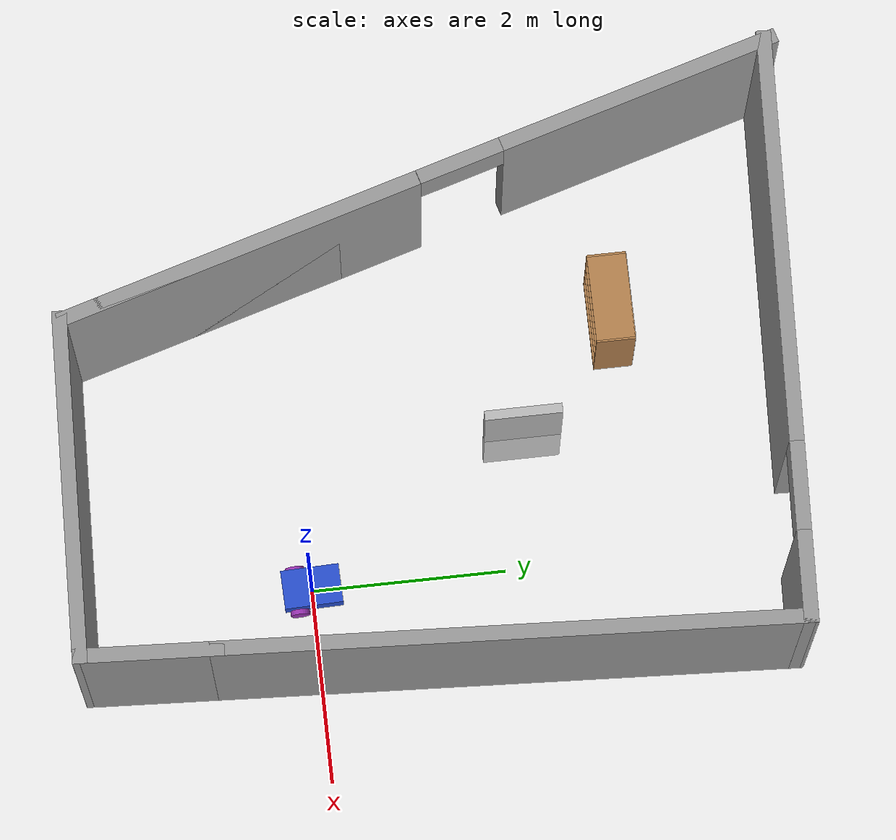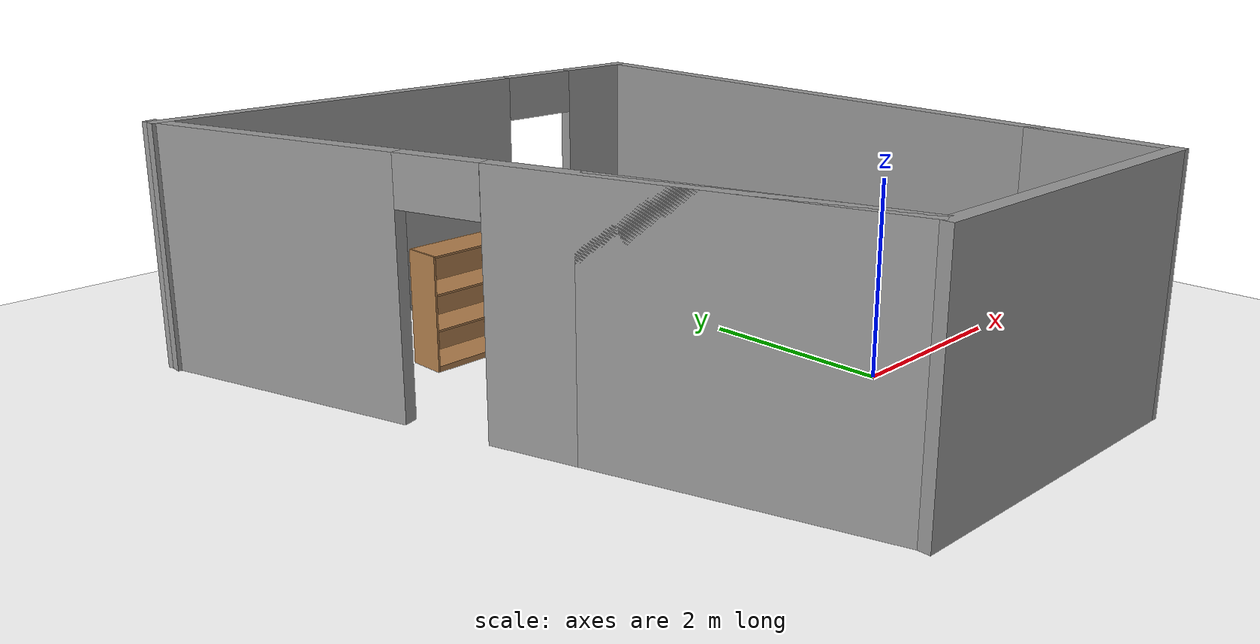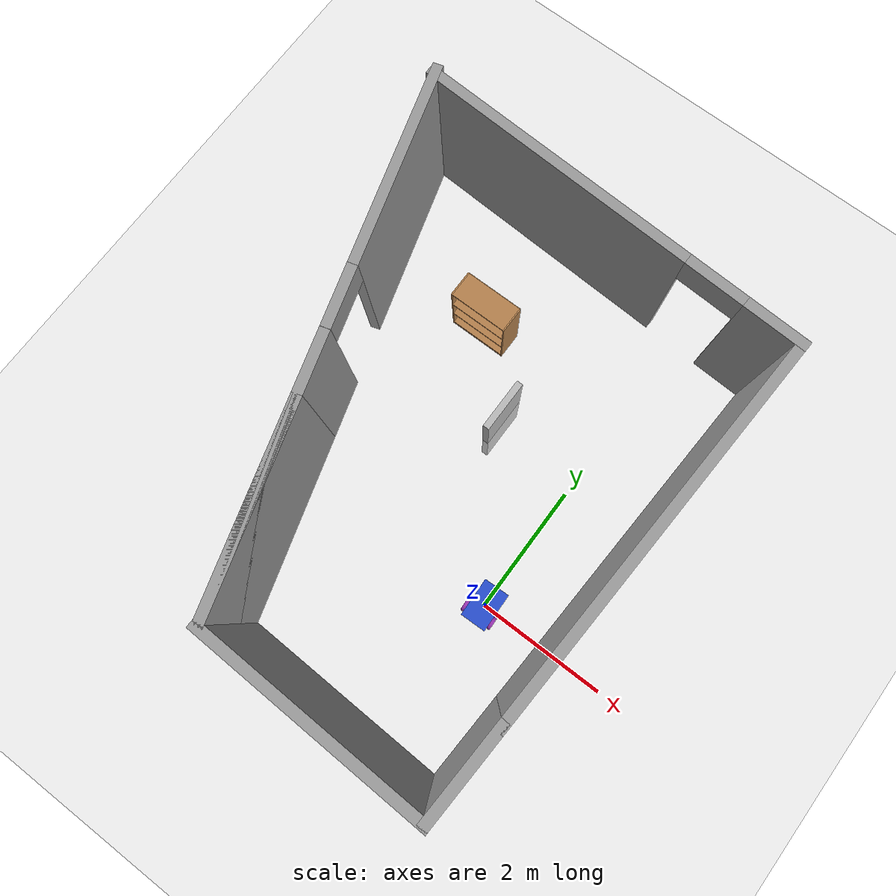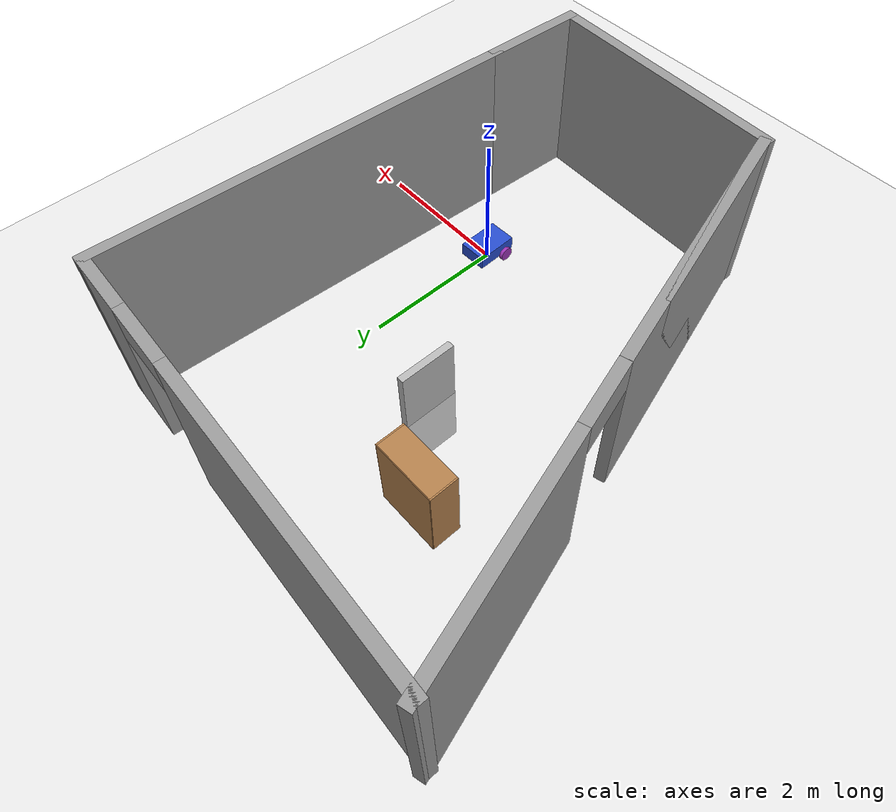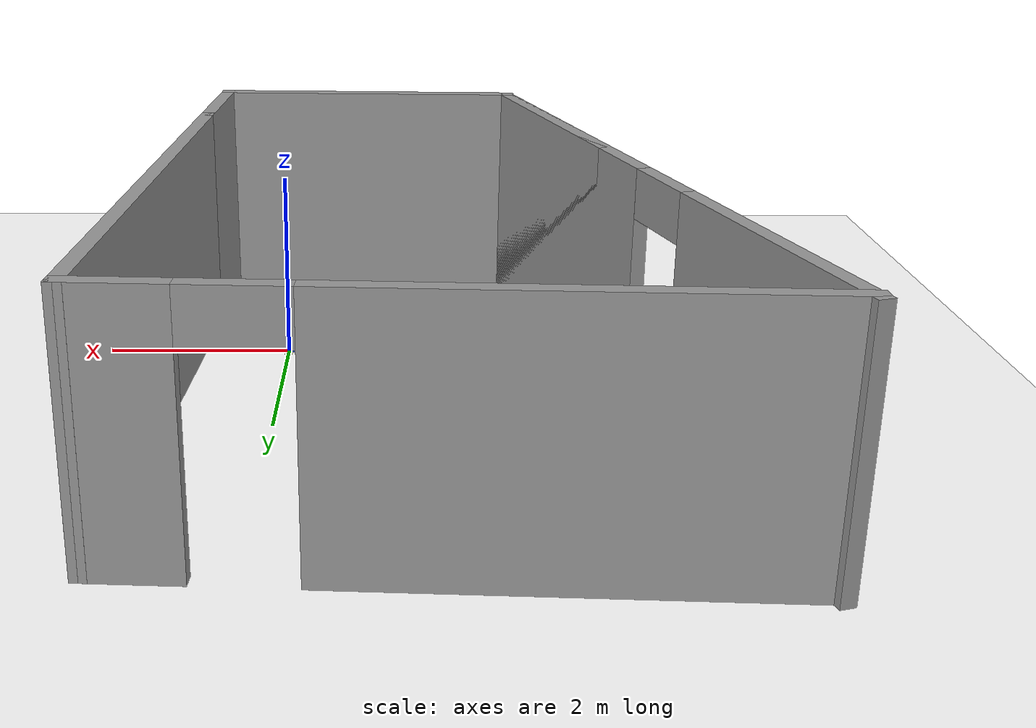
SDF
<sdf version="1.7">
 <world name="default">
  <light name="sun" type="directional">
   <pose>0 0 10 0 -0 0</pose>
   <diffuse>0.8 0.8 0.8 1</diffuse>
   <specular>0.2 0.2 0.2 1</specular>
   <attenuation>
    <range>1000</range>
    <constant>0.9</constant>
    <linear>0.01</linear>
    <quadratic>0.001</quadratic>
   </attenuation>
   <direction>-0.5 0.1 -0.9</direction>
   <spot><inner_angle>0</inner_angle><outer_angle>0</outer_angle><falloff>0</falloff></spot>
  </light>
  <model name="ground_plane">
   <static>1</static>
   <link name="link">
    <collision name="collision">
     <geometry><plane><normal>0 0 1</normal><size>100 100</size></plane></geometry>
     <surface>
      <contact><collide_bitmask>65535</collide_bitmask></contact>
      <friction><ode><mu>100</mu><mu2>50</mu2></ode></friction>
     </surface>
    </collision>
    <visual name="visual">
     <cast_shadows>0</cast_shadows>
     <geometry><plane><normal>0 0 1</normal><size>100 100</size></plane></geometry>
     <material>
      <script><uri>file://media/materials/scripts/gazebo.material</uri><name>Gazebo/Grey</name></script>
     </material>
    </visual>
   </link>
  </model>
  <gravity>0 0 -9.8</gravity>
  <magnetic_field>6e-06 2.3e-05 -4.2e-05</magnetic_field>
  <atmosphere type="adiabatic"/>
  <physics type="ode">
   <max_step_size>0.001</max_step_size>
   <real_time_factor>1</real_time_factor>
   <real_time_update_rate>1000</real_time_update_rate>
  </physics>
  <scene><ambient>0.4 0.4 0.4 1</ambient><background>0.7 0.7 0.7 1</background><shadows>1</shadows></scene>
  <audio><device>default</device></audio>
  <spherical_coordinates>
   <surface_model>EARTH_WGS84</surface_model>
   <latitude_deg>0</latitude_deg>
   <longitude_deg>0</longitude_deg>
   <elevation>0</elevation>
   <heading_deg>0</heading_deg>
  </spherical_coordinates>
  <model name="my_robot">
   <link name="empty_link">
    <inertial>
     <pose>0 0.025 0.175 0 -0 0</pose>
     <mass>6</mass>
     <inertia>
      <ixx>1.38683</ixx>
      <ixy>0</ixy>
      <ixz>0</ixz>
      <iyy>3.50142</iyy>
      <iyz>0.01875</iyz>
      <izz>2.70142</izz>
     </inertia>
    </inertial>
    <collision name="empty_link_fixed_joint_lump__base_link_collision">
     <pose>0 0 0.2 0 -0 0</pose>
     <geometry><box><size>0.4 0.6 0.2</size></box></geometry>
    </collision>
    <collision name="empty_link_fixed_joint_lump__castor_wheel_link_collision_1">
     <pose>0 0.15 0.05 0 -0 0</pose>
     <geometry><sphere><radius>0.05</radius></sphere></geometry>
     <surface><friction><ode><mu>0.1</mu><mu2>0.1</mu2></ode></friction></surface>
    </collision>
    <visual name="empty_link_fixed_joint_lump__base_link_visual">
     <pose>0 0 0.2 0 -0 0</pose>
     <geometry><box><size>0.4 0.6 0.2</size></box></geometry>
     <material>
      <script><name>Gazebo/Blue</name><uri>file://media/materials/scripts/gazebo.material</uri></script>
     </material>
    </visual>
    <visual name="empty_link_fixed_joint_lump__castor_wheel_link_visual_1">
     <pose>0 0.15 0.05 0 -0 0</pose>
     <geometry><sphere><radius>0.05</radius></sphere></geometry>
     <material>
      <script><name>Gazebo/Yellow</name><uri>file://media/materials/scripts/gazebo.material</uri></script>
     </material>
    </visual>
   </link>
   <joint name="base_left_wheel_joint" type="revolute">
    <pose relative_to="empty_link">-0.2 -0.15 0.1 0 -0 0</pose>
    <parent>empty_link</parent>
    <child>left_wheel_link</child>
    <axis>
     <xyz>1 0 0</xyz>
     <limit><lower>-1e+16</lower><upper>1e+16</upper></limit>
     <dynamics><spring_reference>0</spring_reference><spring_stiffness>0</spring_stiffness></dynamics>
    </axis>
   </joint>
   <link name="left_wheel_link">
    <pose relative_to="base_left_wheel_joint">0 0 0 0 -0 0</pose>
    <inertial>
     <pose>-0.025 0 0 3.14159 -1.57079 3.14159</pose>
     <mass>0.5</mass>
     <inertia><ixx>0.0216667</ixx><ixy>0</ixy><ixz>0</ixz><iyy>0.0216667</iyy><iyz>0</iyz><izz>0.04</izz></inertia>
    </inertial>
    <collision name="left_wheel_link_collision">
     <pose>-0.025 0 0 3.14159 -1.57079 3.14159</pose>
     <geometry><cylinder><length>0.05</length><radius>0.1</radius></cylinder></geometry>
    </collision>
    <visual name="left_wheel_link_visual">
     <pose>-0.025 0 0 3.14159 -1.57079 3.14159</pose>
     <geometry><cylinder><length>0.05</length><radius>0.1</radius></cylinder></geometry>
     <material>
      <script><name>Gazebo/Purple</name><uri>file://media/materials/scripts/gazebo.material</uri></script>
     </material>
    </visual>
   </link>
   <joint name="base_right_wheel_joint" type="revolute">
    <pose relative_to="empty_link">0.2 -0.15 0.1 0 -0 0</pose>
    <parent>empty_link</parent>
    <child>right_wheel_link</child>
    <axis>
     <xyz>1 0 0</xyz>
     <limit><lower>-1e+16</lower><upper>1e+16</upper></limit>
     <dynamics><spring_reference>0</spring_reference><spring_stiffness>0</spring_stiffness></dynamics>
    </axis>
   </joint>
   <link name="right_wheel_link">
    <pose relative_to="base_right_wheel_joint">0 0 0 0 -0 0</pose>
    <inertial>
     <pose>0.025 0 0 3.14159 1.57079 3.14159</pose>
     <mass>1</mass>
     <inertia><ixx>0.0433333</ixx><ixy>0</ixy><ixz>0</ixz><iyy>0.0433333</iyy><iyz>0</iyz><izz>0.08</izz></inertia>
    </inertial>
    <collision name="right_wheel_link_collision">
     <pose>0.025 0 0 3.14159 1.57079 3.14159</pose>
     <geometry><cylinder><length>0.05</length><radius>0.1</radius></cylinder></geometry>
    </collision>
    <visual name="right_wheel_link_visual">
     <pose>0.025 0 0 3.14159 1.57079 3.14159</pose>
     <geometry><cylinder><length>0.05</length><radius>0.1</radius></cylinder></geometry>
     <material>
      <script><name>Gazebo/Purple</name><uri>file://media/materials/scripts/gazebo.material</uri></script>
     </material>
    </visual>
   </link>
   <static>0</static>
   <plugin name="diff_drive_controller" filename="libgazebo_ros_diff_drive.so">
    <update_rate>50</update_rate>
    <left_joint>base_left_wheel_joint</left_joint>
    <right_joint>base_right_wheel_joint</right_joint>
    <wheel_separation>0.45</wheel_separation>
    <wheel_diameter>0.2</wheel_diameter>
    <publish_odom>1</publish_odom>
    <publish_odom_tf>1</publish_odom_tf>
    <publish_wheel_tf>1</publish_wheel_tf>
    <odometry_topic>odom</odometry_topic>
    <odometry_frame>odom</odometry_frame>
    <robot_base_frame>empty_link</robot_base_frame>
   </plugin>
   <pose>-8.4e-05 0.002072 -0 -0 -2e-06 0.029416</pose>
  </model>
  <model name="first_env">
   <pose>-1.89967 1.39289 0 0 0 -0.051172</pose>
   <link name="Wall_0">
    <collision name="Wall_0_Collision">
     <geometry><box><size>3.57047 0.15 2.5</size></box></geometry>
     <pose>0 0 1.25 0 -0 0</pose>
    </collision>
    <visual name="Wall_0_Visual">
     <pose>0 0 1.25 0 -0 0</pose>
     <geometry><box><size>3.57047 0.15 2.5</size></box></geometry>
     <material>
      <script><uri>file://media/materials/scripts/gazebo.material</uri><name>Gazebo/Grey</name></script>
      <ambient>1 1 1 1</ambient>
     </material>
     <meta><layer>0</layer></meta>
    </visual>
    <pose>1.25964 -3.60964 0 0 -0 0.015643</pose>
   </link>
   <link name="Wall_1">
    <collision name="Wall_1_Collision">
     <geometry><box><size>1.5 0.15 2.5</size></box></geometry>
     <pose>0 0 1.25 0 -0 0</pose>
    </collision>
    <visual name="Wall_1_Visual">
     <pose>0 0 1.25 0 -0 0</pose>
     <geometry><box><size>1.5 0.15 2.5</size></box></geometry>
     <material>
      <script><uri>file://media/materials/scripts/gazebo.material</uri><name>Gazebo/Grey</name></script>
      <ambient>1 1 1 1</ambient>
     </material>
     <meta><layer>0</layer></meta>
    </visual>
    <pose>2.96967 -2.90789 0 0 -0 1.5708</pose>
   </link>
   <link name="Wall_3">
    <collision name="Wall_3_Collision">
     <geometry><box><size>6 0.15 2.5</size></box></geometry>
     <pose>0 0 1.25 0 -0 0</pose>
    </collision>
    <visual name="Wall_3_Visual">
     <pose>0 0 1.25 0 -0 0</pose>
     <geometry><box><size>6 0.15 2.5</size></box></geometry>
     <material>
      <script><uri>file://media/materials/scripts/gazebo.material</uri><name>Gazebo/Grey</name></script>
      <ambient>1 1 1 1</ambient>
     </material>
     <meta><layer>0</layer></meta>
    </visual>
    <pose>2.96967 0.692108 0 0 -0 1.5708</pose>
   </link>
   <link name="Wall_4">
    <pose>0.009644 3.59036 0 0 -0 -3.13255</pose>
    <visual name="Wall_4_Visual_0">
     <pose>-2.56602 0 1.25 0 -0 0</pose>
     <geometry><box><size>0.938981 0.15 2.5</size></box></geometry>
     <material>
      <script><uri>file://media/materials/scripts/gazebo.material</uri><name>Gazebo/Grey</name></script>
      <ambient>1 1 1 1</ambient>
     </material>
     <meta><layer>0</layer></meta>
    </visual>
    <collision name="Wall_4_Collision_0">
     <geometry><box><size>0.938981 0.15 2.5</size></box></geometry>
     <pose>-2.56602 0 1.25 0 -0 0</pose>
    </collision>
    <visual name="Wall_4_Visual_1">
     <pose>0.919491 0 1.25 0 -0 0</pose>
     <geometry><box><size>4.23204 0.15 2.5</size></box></geometry>
     <material>
      <script><uri>file://media/materials/scripts/gazebo.material</uri><name>Gazebo/Grey</name></script>
      <ambient>1 1 1 1</ambient>
     </material>
     <meta><layer>0</layer></meta>
    </visual>
    <collision name="Wall_4_Collision_1">
     <geometry><box><size>4.23204 0.15 2.5</size></box></geometry>
     <pose>0.919491 0 1.25 0 -0 0</pose>
    </collision>
    <visual name="Wall_4_Visual_2">
     <pose>-1.64653 0 2.25 0 -0 0</pose>
     <geometry><box><size>0.9 0.15 0.5</size></box></geometry>
     <material>
      <script><uri>file://media/materials/scripts/gazebo.material</uri><name>Gazebo/Grey</name></script>
      <ambient>1 1 1 1</ambient>
     </material>
     <meta><layer>0</layer></meta>
    </visual>
    <collision name="Wall_4_Collision_2">
     <geometry><box><size>0.9 0.15 0.5</size></box></geometry>
     <pose>-1.64653 0 2.25 0 -0 0</pose>
    </collision>
   </link>
   <link name="Wall_5">
    <pose>-1.70038 0.017107 0 0 -0 -1.2366</pose>
    <visual name="Wall_5_Visual_0">
     <pose>-2.38842 0 1.25 0 -0 0</pose>
     <geometry><box><size>2.99483 0.15 2.5</size></box></geometry>
     <material>
      <script><uri>file://media/materials/scripts/gazebo.material</uri><name>Gazebo/Grey</name></script>
      <ambient>1 1 1 1</ambient>
     </material>
     <meta><layer>0</layer></meta>
    </visual>
    <collision name="Wall_5_Collision_0">
     <geometry><box><size>2.99483 0.15 2.5</size></box></geometry>
     <pose>-2.38842 0 1.25 0 -0 0</pose>
    </collision>
    <visual name="Wall_5_Visual_1">
     <pose>1.94742 0 1.25 0 -0 0</pose>
     <geometry><box><size>3.87685 0.15 2.5</size></box></geometry>
     <material>
      <script><uri>file://media/materials/scripts/gazebo.material</uri><name>Gazebo/Grey</name></script>
      <ambient>1 1 1 1</ambient>
     </material>
     <meta><layer>0</layer></meta>
    </visual>
    <collision name="Wall_5_Collision_1">
     <geometry><box><size>3.87685 0.15 2.5</size></box></geometry>
     <pose>1.94742 0 1.25 0 -0 0</pose>
    </collision>
    <visual name="Wall_5_Visual_2">
     <pose>2.39668 0 1.25 0 -0 0</pose>
     <geometry><box><size>2.97831 0.15 2.5</size></box></geometry>
     <material>
      <script><uri>file://media/materials/scripts/gazebo.material</uri><name>Gazebo/Grey</name></script>
      <ambient>1 1 1 1</ambient>
     </material>
     <meta><layer>0</layer></meta>
    </visual>
    <collision name="Wall_5_Collision_2">
     <geometry><box><size>2.97831 0.15 2.5</size></box></geometry>
     <pose>2.39668 0 1.25 0 -0 0</pose>
    </collision>
    <visual name="Wall_5_Visual_3">
     <pose>-0.44174 0 2.25 0 -0 0</pose>
     <geometry><box><size>0.898532 0.15 0.5</size></box></geometry>
     <material>
      <script><uri>file://media/materials/scripts/gazebo.material</uri><name>Gazebo/Grey</name></script>
      <ambient>1 1 1 1</ambient>
     </material>
     <meta><layer>0</layer></meta>
    </visual>
    <collision name="Wall_5_Collision_3">
     <geometry><box><size>0.898532 0.15 0.5</size></box></geometry>
     <pose>-0.44174 0 2.25 0 -0 0</pose>
    </collision>
   </link>
   <static>1</static>
  </model>
  <model name="bookshelf">
   <static>1</static>
   <link name="link">
    <inertial><mass>1</mass></inertial>
    <collision name="back">
     <pose>0 0.005 0.6 0 -0 0</pose>
     <geometry><box><size>0.9 0.01 1.2</size></box></geometry>
    </collision>
    <visual name="visual1">
     <pose>0 0.005 0.6 0 -0 0</pose>
     <geometry><box><size>0.9 0.01 1.2</size></box></geometry>
     <material>
      <script><uri>file://media/materials/scripts/gazebo.material</uri><name>Gazebo/Wood</name></script>
     </material>
    </visual>
    <collision name="left_side">
     <pose>0.45 -0.195 0.6 0 -0 0</pose>
     <geometry><box><size>0.02 0.4 1.2</size></box></geometry>
    </collision>
    <visual name="visual2">
     <pose>0.45 -0.195 0.6 0 -0 0</pose>
     <geometry><box><size>0.02 0.4 1.2</size></box></geometry>
     <material>
      <script><uri>file://media/materials/scripts/gazebo.material</uri><name>Gazebo/Wood</name></script>
     </material>
    </visual>
    <collision name="right_side">
     <pose>-0.45 -0.195 0.6 0 -0 0</pose>
     <geometry><box><size>0.02 0.4 1.2</size></box></geometry>
    </collision>
    <visual name="visual3">
     <pose>-0.45 -0.195 0.6 0 -0 0</pose>
     <geometry><box><size>0.02 0.4 1.2</size></box></geometry>
     <material>
      <script><uri>file://media/materials/scripts/gazebo.material</uri><name>Gazebo/Wood</name></script>
     </material>
    </visual>
    <collision name="bottom">
     <pose>0 -0.195 0.03 0 -0 0</pose>
     <geometry><box><size>0.88 0.4 0.06</size></box></geometry>
    </collision>
    <visual name="visual4">
     <pose>0 -0.195 0.03 0 -0 0</pose>
     <geometry><box><size>0.88 0.4 0.06</size></box></geometry>
     <material>
      <script><uri>file://media/materials/scripts/gazebo.material</uri><name>Gazebo/Wood</name></script>
     </material>
    </visual>
    <collision name="top">
     <pose>0 -0.195 1.19 0 -0 0</pose>
     <geometry><box><size>0.88 0.4 0.02</size></box></geometry>
    </collision>
    <visual name="visual5">
     <pose>0 -0.195 1.19 0 -0 0</pose>
     <geometry><box><size>0.88 0.4 0.02</size></box></geometry>
     <material>
      <script><uri>file://media/materials/scripts/gazebo.material</uri><name>Gazebo/Wood</name></script>
     </material>
    </visual>
    <collision name="low_shelf">
     <pose>0 -0.195 0.43 0 -0 0</pose>
     <geometry><box><size>0.88 0.4 0.02</size></box></geometry>
    </collision>
    <visual name="visual6">
     <pose>0 -0.195 0.43 0 -0 0</pose>
     <geometry><box><size>0.88 0.4 0.02</size></box></geometry>
     <material>
      <script><uri>file://media/materials/scripts/gazebo.material</uri><name>Gazebo/Wood</name></script>
     </material>
    </visual>
    <collision name="high_shelf">
     <pose>0 -0.195 0.8 0 -0 0</pose>
     <geometry><box><size>0.88 0.4 0.02</size></box></geometry>
    </collision>
    <visual name="visual7">
     <pose>0 -0.195 0.8 0 -0 0</pose>
     <geometry><box><size>0.88 0.4 0.02</size></box></geometry>
     <material>
      <script><uri>file://media/materials/scripts/gazebo.material</uri><name>Gazebo/Wood</name></script>
     </material>
    </visual>
   </link>
   <pose>-2.4816 3.54064 0 0 -0 0</pose>
  </model>
  <model name="door_08x2m">
   <link name="link">
    <visual name="visual">
     <geometry><box><size>0.1 0.8 2</size></box></geometry>
     <material>
      <script>
       <uri>https://fuel.ignitionrobotics.org/1.0/watermelon123/models/six-eight door/1/files/material/script</uri>
       <uri>https://fuel.ignitionrobotics.org/1.0/watermelon123/models/six-eight door/1/files/material/textures</uri>
       <name>Custom/door_08x2m</name>
      </script>
     </material>
    </visual>
   </link>
   <static>1</static>
   <pose>-1.42999 2.3333 0 0 -0 0</pose>
  </model>
 </world>
</sdf>
